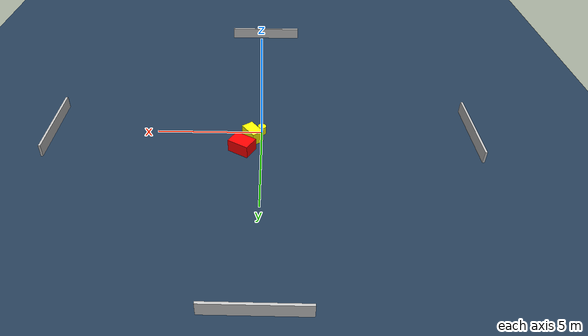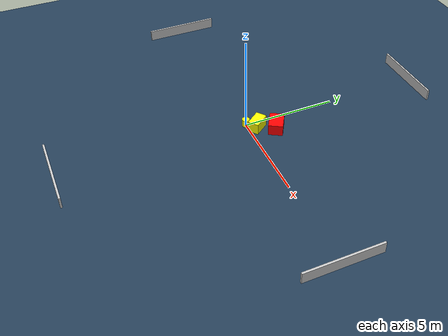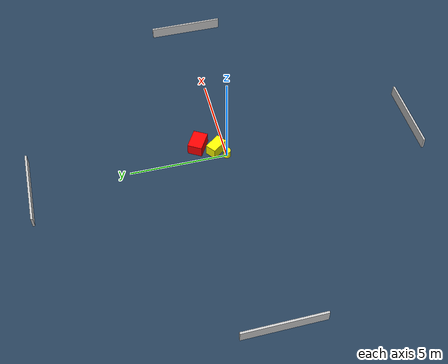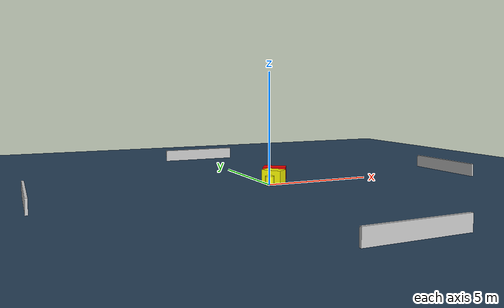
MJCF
<?xml version="1.0" ?>
<mujoco model="generated_environment">
  <option timestep="0.01" integrator="RK4" cone="elliptic"/>
  <default>
    <geom density="1"/>
  </default>
  <asset>
    <texture builtin="gradient" height="3072" name="skybox" rgb1="0.3 0.5 0.7" rgb2="0 0 0" type="skybox" width="512"/>
    <texture builtin="checker" height="300" name="groundplane" rgb1="0.2 0.3 0.4" rgb2="0.1 0.2 0.3" type="2d" width="300"/>
    <material name="groundplane" reflectance="0.2" texrepeat="5 5" texture="groundplane"/>
  </asset>
  <worldbody>
    <light dir="0 0 -1" directional="true" pos="0 0 1.5"/>
    <geom condim="3" friction="0.5 0.005 0.001" material="groundplane" name="floor" pos="0 0 0" size="0 0 0.05" type="plane"/>
    <body name="walls">
      <geom name="wall_1" condim="4" pos="-10.0 0.0 0.3" rgba="0.800000011920929 0.800000011920929 0.800000011920929 1.0" size="0.05 2.0 0.3" type="box"/>
      <geom name="wall_2" condim="4" pos="10.0 0.0 0.3" rgba="0.800000011920929 0.800000011920929 0.800000011920929 1.0" size="0.05 2.0 0.3" type="box"/>
      <geom name="wall_3" condim="4" pos="0.0 -10.0 0.3" rgba="0.800000011920929 0.800000011920929 0.800000011920929 1.0" size="2.0 0.05 0.3" type="box"/>
      <geom name="wall_4" condim="4" pos="0.0 10.0 0.3" rgba="0.800000011920929 0.800000011920929 0.800000011920929 1.0" size="2.0 0.05 0.3" type="box"/>
    </body>
    <body name="robot">
      <joint name="joint_x" type="slide" pos="0 0 0" axis="1 0 0"/>
      <joint name="joint_y" type="slide" pos="0 0 0" axis="0 1 0"/>
      <geom name="robot" type="cylinder" pos="0.0 0.0 0.2" size="0.2 0.2 0.0" mass="5.0" friction="1.0 0.005 0.0001" condim="4" rgba="1.0 1.0 0.0 1.0"/>
    </body>
    <body name="obstacle_1_movable">
      <geom name="obstacle_1_movable" condim="4" pos="0.4313784272833155 0.45846203909685007 0.3" euler="0 0 36.94036073766441" friction="0.0 0.005 0.001" rgba="1.0 1.0 0.0 1.0" size="0.2877610231542326 0.46314264272527966 0.3" type="box" mass="0.1"/>
      <joint type="free"/>
    </body>
    <body name="obstacle_2_static">
      <geom name="obstacle_2_static" condim="4" pos="0.8951628965305664 1.3255161023472772 0.3" euler="0 0 329.20059224319056" friction="0.0 0.005 0.001" rgba="1.0 0.0 0.0 1.0" size="0.5241488123880869 0.3778062085505062 0.3" type="box"/>
    </body>
  </worldbody>
  <actuator>
    <motor name="actuator_x" joint="joint_x" gear="1" ctrlrange="-1 1"/>
    <motor name="actuator_y" joint="joint_y" gear="1" ctrlrange="-1 1"/>
  </actuator>
</mujoco>
